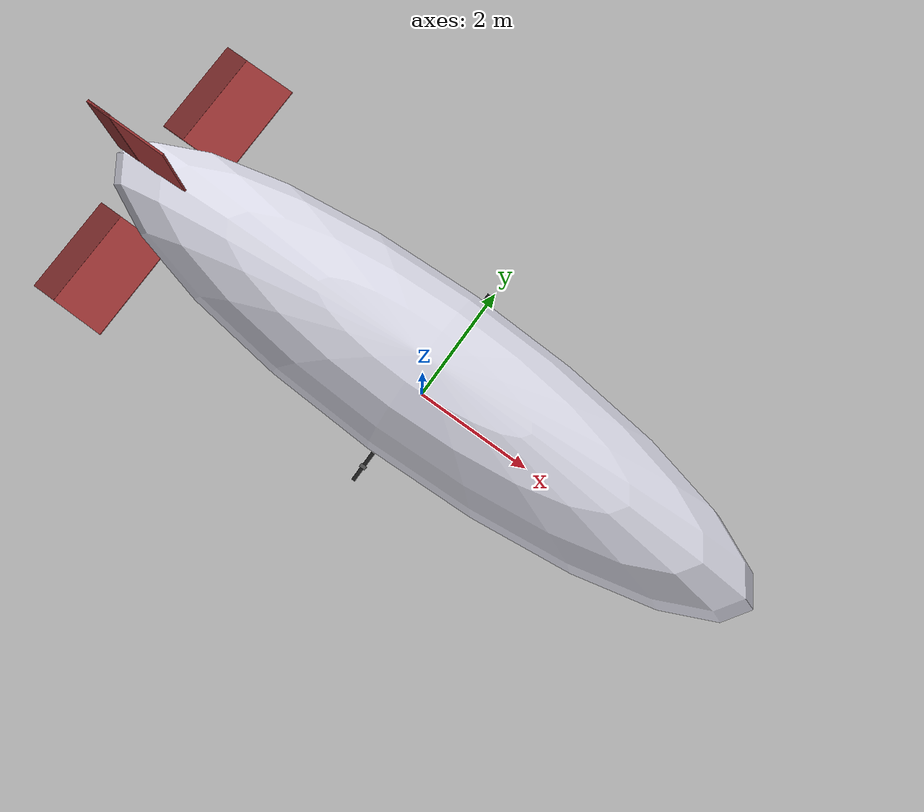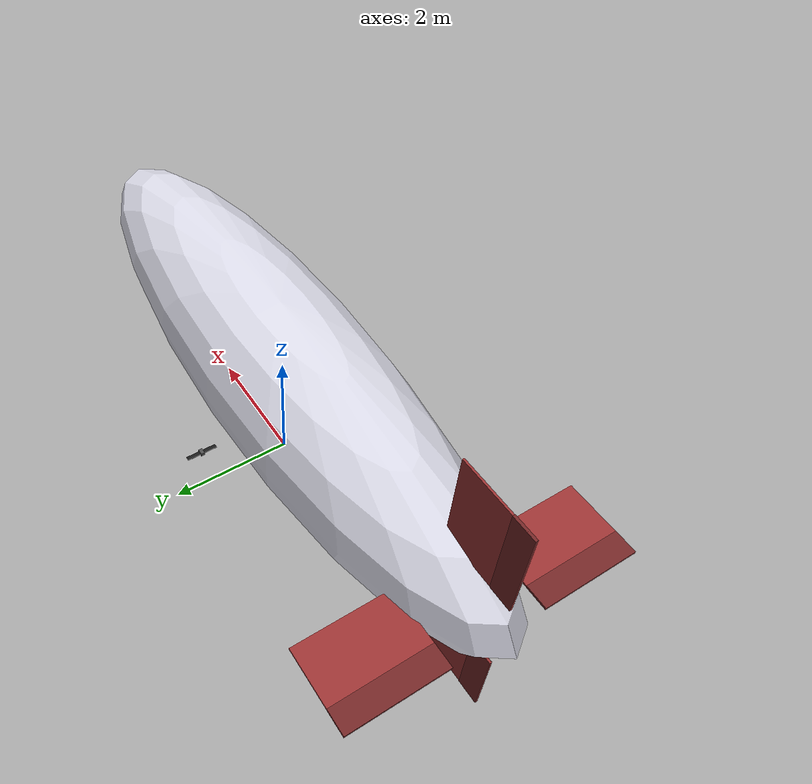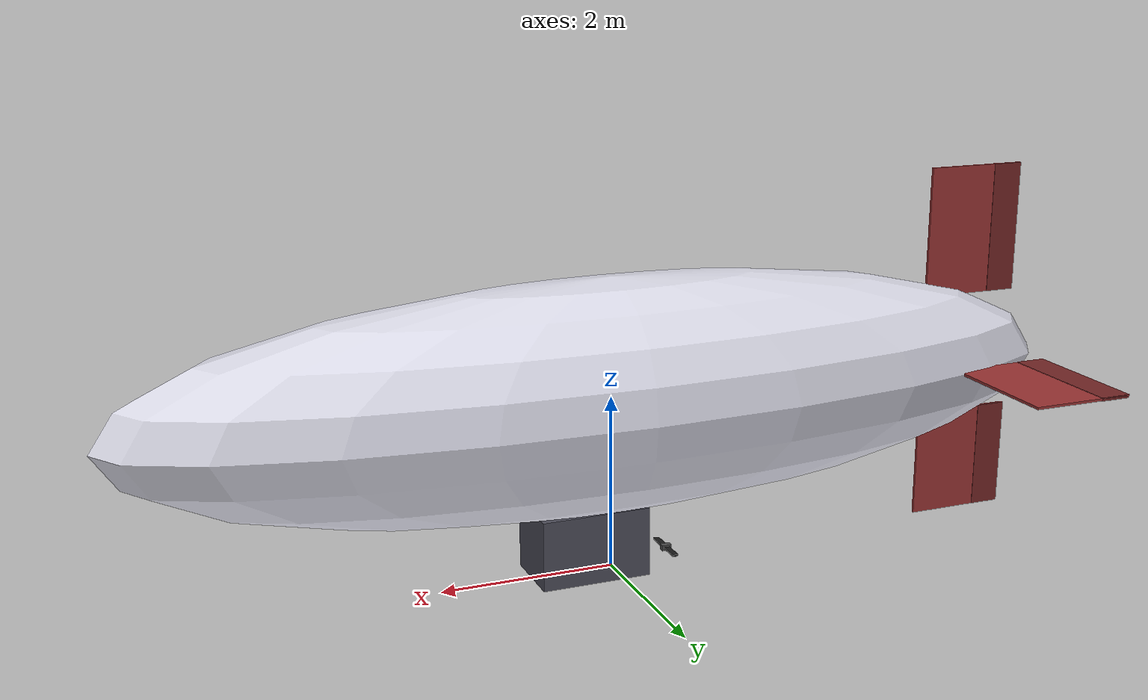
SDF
<?xml version="1.0" encoding="UTF-8"?>
<!--
  The complete fixed-thruster airship plant: airship_fixed_am merged plus the
  hull drag and rotational damping block. The model to fly the 2500 airframe
  against at speed.
-->
<sdf version="1.10">
  <model name="airship_fixed_am_drag">
    <include merge="true">
      <uri>model://airship_fixed_am</uri>
    </include>
    <plugin filename="gz-sim-hydrodynamics-system" name="gz::sim::systems::Hydrodynamics">
      <link_name>base_link</link_name>
      <!-- Quadratic drag [N/(m/s)^2] -->
      <xUabsU>-0.2748</xUabsU>
      <yVabsV>-10.3954</yVabsV>
      <zWabsW>-10.3954</zWabsW>
      <!-- Rotational damping [N m/(rad/s)^2], with the linear roll term the
           very lightly damped roll mode needs [N m/(rad/s)] -->
      <kP>-8.0520</kP>
      <kPabsP>-36.2342</kPabsP>
      <mQabsQ>-241.5613</mQabsQ>
      <nRabsR>-241.5613</nRabsR>
      <xQabsU>-1.1267</xQabsU>
      <yPabsV>42.6210</yPabsV>
      <mUabsU>-0.5634</mUabsU>
      <mQabsU>-2.3098</mQabsU>
      <kVabsV>21.3105</kVabsV>
      <kPabsV>-87.3731</kPabsV>
      <disable_added_mass>true</disable_added_mass>
    </plugin>
  </model>
</sdf>

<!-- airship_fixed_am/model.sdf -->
<sdf version="1.10">
  <model name="airship_fixed_am">
    <include merge="true">
      <uri>model://airship_base_am</uri>
    </include>
    <link name="pod_starboard">
      <pose>0 -1.5 0.8125 0 0 0</pose>
      <inertial>
        <mass>0.398</mass>
        <inertia>
          <ixx>0.001</ixx>
          <iyy>0.001</iyy>
          <izz>0.001</izz>
        </inertia>
      </inertial>
      <visual name="pod_starboard_visual">
        <geometry>
          <box>
            <size>0.10 0.06 0.06</size>
          </box>
        </geometry>
        <material>
          <ambient>0.3 0.3 0.3 1</ambient>
          <diffuse>0.3 0.3 0.3 1</diffuse>
        </material>
      </visual>
    </link>
    <joint name="mount_starboard_joint" type="fixed">
      <parent>base_link</parent>
      <child>pod_starboard</child>
    </joint>
    <link name="prop_starboard">
      <pose degrees="true">0 -1.5 0.8125 0 90 0</pose>
      <inertial>
        <mass>0.1</mass>
        <inertia>
          <ixx>0.001</ixx>
          <iyy>0.001</iyy>
          <izz>0.001</izz>
        </inertia>
      </inertial>
      <visual name="prop_starboard_visual">
        <geometry>
          <box>
            <size>0.02 0.5 0.06</size>
          </box>
        </geometry>
        <material>
          <ambient>0.1 0.1 0.1 1</ambient>
          <diffuse>0.1 0.1 0.1 1</diffuse>
        </material>
      </visual>
    </link>
    <joint name="prop_starboard_joint" type="revolute">
      <parent>pod_starboard</parent>
      <child>prop_starboard</child>
      <axis>
        <xyz>0 0 1</xyz>
        <limit>
          <lower>-1e+16</lower>
          <upper>1e+16</upper>
        </limit>
        <dynamics>
          <spring_reference>0</spring_reference>
          <spring_stiffness>0</spring_stiffness>
        </dynamics>
      </axis>
    </joint>
    <link name="pod_port">
      <pose>0 1.5 0.8125 0 0 0</pose>
      <inertial>
        <mass>0.398</mass>
        <inertia>
          <ixx>0.001</ixx>
          <iyy>0.001</iyy>
          <izz>0.001</izz>
        </inertia>
      </inertial>
      <visual name="pod_port_visual">
        <geometry>
          <box>
            <size>0.10 0.06 0.06</size>
          </box>
        </geometry>
        <material>
          <ambient>0.3 0.3 0.3 1</ambient>
          <diffuse>0.3 0.3 0.3 1</diffuse>
        </material>
      </visual>
    </link>
    <joint name="mount_port_joint" type="fixed">
      <parent>base_link</parent>
      <child>pod_port</child>
    </joint>
    <link name="prop_port">
      <pose degrees="true">0 1.5 0.8125 0 90 0</pose>
      <inertial>
        <mass>0.1</mass>
        <inertia>
          <ixx>0.001</ixx>
          <iyy>0.001</iyy>
          <izz>0.001</izz>
        </inertia>
      </inertial>
      <visual name="prop_port_visual">
        <geometry>
          <box>
            <size>0.02 0.5 0.06</size>
          </box>
        </geometry>
        <material>
          <ambient>0.1 0.1 0.1 1</ambient>
          <diffuse>0.1 0.1 0.1 1</diffuse>
        </material>
      </visual>
    </link>
    <joint name="prop_port_joint" type="revolute">
      <parent>pod_port</parent>
      <child>prop_port</child>
      <axis>
        <xyz>0 0 1</xyz>
        <limit>
          <lower>-1e+16</lower>
          <upper>1e+16</upper>
        </limit>
        <dynamics>
          <spring_reference>0</spring_reference>
          <spring_stiffness>0</spring_stiffness>
        </dynamics>
      </axis>
    </joint>
    <plugin filename="gz-sim-multicopter-motor-model-system"
            name="gz::sim::systems::MulticopterMotorModel">
      <jointName>prop_starboard_joint</jointName>
      <linkName>prop_starboard</linkName>
      <turningDirection>ccw</turningDirection>
      <timeConstantUp>0.0125</timeConstantUp>
      <timeConstantDown>0.025</timeConstantDown>
      <maxRotVelocity>300.0</maxRotVelocity>
      <motorConstant>0.0002</motorConstant>
      <momentConstant>0.016</momentConstant>
      <commandSubTopic>command/motor_speed</commandSubTopic>
      <motorNumber>0</motorNumber>
      <rotorDragCoefficient>8.06428e-05</rotorDragCoefficient>
      <rollingMomentCoefficient>1e-06</rollingMomentCoefficient>
      <rotorVelocitySlowdownSim>10</rotorVelocitySlowdownSim>
      <motorType>velocity</motorType>
    </plugin>
    <plugin filename="gz-sim-multicopter-motor-model-system"
            name="gz::sim::systems::MulticopterMotorModel">
      <jointName>prop_port_joint</jointName>
      <linkName>prop_port</linkName>
      <turningDirection>cw</turningDirection>
      <timeConstantUp>0.0125</timeConstantUp>
      <timeConstantDown>0.025</timeConstantDown>
      <maxRotVelocity>300.0</maxRotVelocity>
      <motorConstant>0.0002</motorConstant>
      <momentConstant>0.016</momentConstant>
      <commandSubTopic>command/motor_speed</commandSubTopic>
      <motorNumber>1</motorNumber>
      <rotorDragCoefficient>8.06428e-05</rotorDragCoefficient>
      <rollingMomentCoefficient>1e-06</rollingMomentCoefficient>
      <rotorVelocitySlowdownSim>10</rotorVelocitySlowdownSim>
      <motorType>velocity</motorType>
    </plugin>
    <link name="flap_port">
      <pose>-4.8257 1.4768 2.0500 0 0 0</pose>
      <inertial>
        <mass>0.001</mass>
        <inertia>
          <ixx>1e-05</ixx>
          <iyy>1e-05</iyy>
          <izz>1e-05</izz>
        </inertia>
      </inertial>
      <visual name="flap_port_visual">
        <pose>-0.180 0 0 0 0 0</pose>
        <geometry>
          <box>
            <size>0.36 1.52 0.04</size>
          </box>
        </geometry>
        <material>
          <ambient>0.45 0.15 0.15 1</ambient>
          <diffuse>0.45 0.15 0.15 1</diffuse>
        </material>
      </visual>
    </link>
    <joint name="flap_port_joint" type="revolute">
      <parent>base_link</parent>
      <child>flap_port</child>
      <axis>
        <xyz>0 1 0</xyz>
        <limit>
          <lower>-0.1920</lower>
          <upper>0.1920</upper>
        </limit>
        <dynamics>
          <damping>0.5</damping>
        </dynamics>
      </axis>
    </joint>
    <plugin filename="gz-sim-joint-position-controller-system"
            name="gz::sim::systems::JointPositionController">
      <joint_name>flap_port_joint</joint_name>
      <sub_topic>servo_1</sub_topic>
      <p_gain>10.0</p_gain>
      <i_gain>0</i_gain>
      <d_gain>0</d_gain>
    </plugin>
    <link name="flap_starboard">
      <pose>-4.8257 -1.4768 2.0500 0 0 0</pose>
      <inertial>
        <mass>0.001</mass>
        <inertia>
          <ixx>1e-05</ixx>
          <iyy>1e-05</iyy>
          <izz>1e-05</izz>
        </inertia>
      </inertial>
      <visual name="flap_starboard_visual">
        <pose>-0.180 0 0 0 0 0</pose>
        <geometry>
          <box>
            <size>0.36 1.52 0.04</size>
          </box>
        </geometry>
        <material>
          <ambient>0.45 0.15 0.15 1</ambient>
          <diffuse>0.45 0.15 0.15 1</diffuse>
        </material>
      </visual>
    </link>
    <joint name="flap_starboard_joint" type="revolute">
      <parent>base_link</parent>
      <child>flap_starboard</child>
      <axis>
        <xyz>0 1 0</xyz>
        <limit>
          <lower>-0.1920</lower>
          <upper>0.1920</upper>
        </limit>
        <dynamics>
          <damping>0.5</damping>
        </dynamics>
      </axis>
    </joint>
    <plugin filename="gz-sim-joint-position-controller-system"
            name="gz::sim::systems::JointPositionController">
      <joint_name>flap_starboard_joint</joint_name>
      <sub_topic>servo_0</sub_topic>
      <p_gain>10.0</p_gain>
      <i_gain>0</i_gain>
      <d_gain>0</d_gain>
    </plugin>
    <link name="flap_top">
      <pose>-4.8257 0.0000 3.5268 0 0 0</pose>
      <inertial>
        <mass>0.001</mass>
        <inertia>
          <ixx>1e-05</ixx>
          <iyy>1e-05</iyy>
          <izz>1e-05</izz>
        </inertia>
      </inertial>
      <visual name="flap_top_visual">
        <pose>-0.180 0 0 0 0 0</pose>
        <geometry>
          <box>
            <size>0.36 0.04 1.52</size>
          </box>
        </geometry>
        <material>
          <ambient>0.45 0.15 0.15 1</ambient>
          <diffuse>0.45 0.15 0.15 1</diffuse>
        </material>
      </visual>
    </link>
    <joint name="flap_top_joint" type="revolute">
      <parent>base_link</parent>
      <child>flap_top</child>
      <axis>
        <xyz>0 0 1</xyz>
        <limit>
          <lower>-0.1920</lower>
          <upper>0.1920</upper>
        </limit>
        <dynamics>
          <damping>0.5</damping>
        </dynamics>
      </axis>
    </joint>
    <plugin filename="gz-sim-joint-position-controller-system"
            name="gz::sim::systems::JointPositionController">
      <joint_name>flap_top_joint</joint_name>
      <sub_topic>servo_2</sub_topic>
      <p_gain>10.0</p_gain>
      <i_gain>0</i_gain>
      <d_gain>0</d_gain>
    </plugin>
    <link name="flap_bottom">
      <pose>-4.8257 0.0000 0.6932 0 0 0</pose>
      <inertial>
        <mass>0.001</mass>
        <inertia>
          <ixx>1e-05</ixx>
          <iyy>1e-05</iyy>
          <izz>1e-05</izz>
        </inertia>
      </inertial>
      <visual name="flap_bottom_visual">
        <pose>-0.180 0 0 0 0 0</pose>
        <geometry>
          <box>
            <size>0.36 0.04 1.28</size>
          </box>
        </geometry>
        <material>
          <ambient>0.45 0.15 0.15 1</ambient>
          <diffuse>0.45 0.15 0.15 1</diffuse>
        </material>
      </visual>
    </link>
    <joint name="flap_bottom_joint" type="revolute">
      <parent>base_link</parent>
      <child>flap_bottom</child>
      <axis>
        <xyz>0 0 1</xyz>
        <limit>
          <lower>-0.1920</lower>
          <upper>0.1920</upper>
        </limit>
        <dynamics>
          <damping>0.5</damping>
        </dynamics>
      </axis>
    </joint>
    <plugin filename="gz-sim-joint-position-controller-system"
            name="gz::sim::systems::JointPositionController">
      <joint_name>flap_bottom_joint</joint_name>
      <sub_topic>servo_3</sub_topic>
      <p_gain>10.0</p_gain>
      <i_gain>0</i_gain>
      <d_gain>0</d_gain>
    </plugin>
    <plugin filename="gz-sim-lift-drag-system" name="gz::sim::systems::LiftDrag">
      <!-- fin_port -->
      <link_name>base_link</link_name>
      <air_density>1.225</air_density>
      <cp>-4.2857 1.4768 2.0500</cp>
      <forward>1 0 0</forward>
      <upward>0 0 1</upward>
      <area>1.824</area>
      <a0>0</a0>
      <cla>6.122</cla>
      <cda>0.9133</cda>
      <cma>0</cma>
      <alpha_stall>0.1567</alpha_stall>
      <cla_stall>-0.6785</cla_stall>
      <cda_stall>0.7474</cda_stall>
      <cma_stall>0</cma_stall>
      <control_joint_name>flap_port_joint</control_joint_name>
      <control_joint_rad_to_cl>-2.361</control_joint_rad_to_cl>
    </plugin>
    <plugin filename="gz-sim-lift-drag-system" name="gz::sim::systems::LiftDrag">
      <!-- fin_starboard -->
      <link_name>base_link</link_name>
      <air_density>1.225</air_density>
      <cp>-4.2857 -1.4768 2.0500</cp>
      <forward>1 0 0</forward>
      <upward>0 0 1</upward>
      <area>1.824</area>
      <a0>0</a0>
      <cla>6.122</cla>
      <cda>0.9133</cda>
      <cma>0</cma>
      <alpha_stall>0.1567</alpha_stall>
      <cla_stall>-0.6785</cla_stall>
      <cda_stall>0.7474</cda_stall>
      <cma_stall>0</cma_stall>
      <control_joint_name>flap_starboard_joint</control_joint_name>
      <control_joint_rad_to_cl>-2.361</control_joint_rad_to_cl>
    </plugin>
    <plugin filename="gz-sim-lift-drag-system" name="gz::sim::systems::LiftDrag">
      <!-- fin_top -->
      <link_name>base_link</link_name>
      <air_density>1.225</air_density>
      <cp>-4.2857 0.0000 3.5268</cp>
      <forward>1 0 0</forward>
      <upward>0 1 0</upward>
      <area>1.824</area>
      <a0>0</a0>
      <cla>6.122</cla>
      <cda>0.9133</cda>
      <cma>0</cma>
      <alpha_stall>0.1567</alpha_stall>
      <cla_stall>-0.6785</cla_stall>
      <cda_stall>0.7474</cda_stall>
      <cma_stall>0</cma_stall>
      <control_joint_name>flap_top_joint</control_joint_name>
      <control_joint_rad_to_cl>2.361</control_joint_rad_to_cl>
    </plugin>
    <plugin filename="gz-sim-lift-drag-system" name="gz::sim::systems::LiftDrag">
      <!-- fin_bottom -->
      <link_name>base_link</link_name>
      <air_density>1.225</air_density>
      <cp>-4.2857 0.0000 0.6932</cp>
      <forward>1 0 0</forward>
      <upward>0 1 0</upward>
      <area>1.536</area>
      <a0>0</a0>
      <cla>5.989</cla>
      <cda>1.0379</cda>
      <cma>0</cma>
      <alpha_stall>0.1649</alpha_stall>
      <cla_stall>-0.7024</cla_stall>
      <cda_stall>0.7318</cda_stall>
      <cma_stall>0</cma_stall>
      <control_joint_name>flap_bottom_joint</control_joint_name>
      <control_joint_rad_to_cl>2.244</control_joint_rad_to_cl>
    </plugin>
  </model>
</sdf>

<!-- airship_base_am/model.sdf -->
<sdf version="1.10">
  <model name="airship_base_am">
    <self_collide>false</self_collide>
    <static>false</static>
    <link name="base_link">
      <pose>0 0 0 0 0 0</pose>
      <inertial>
        <pose>0.0067 0.0000 0.8170 0 0 0</pose>
        <mass>48.0</mass>
        <inertia>
          <ixx>41.0847</ixx>
          <iyy>151.4753</iyy>
          <izz>126.8963</izz>
          <ixy>0.0000</ixy>
          <ixz>20.0700</ixz>
          <iyz>0.0000</iyz>
        </inertia>
        <fluid_added_mass>
          <xx>3.65293</xx>
          <yy>41.67889</yy>
          <zz>41.67889</zz>
          <xq>7.48850</xq>
          <yp>-85.44173</yp>
          <pp>175.15555</pp>
          <qq>207.59558</qq>
          <rr>192.24415</rr>
        </fluid_added_mass>
      </inertial>
      <!-- The hull, drawn and collided alike; buoyancy volume 39.2 m^3 -->
      <collision name="hull_collision">
        <pose>0 0 2.05 0 0 0</pose>
        <geometry>
          <ellipsoid>
            <radii>5.48570 1.30612 1.30612</radii>
          </ellipsoid>
        </geometry>
      </collision>
      <!-- Ground contact; buoyancy volume 0.8 m^3 -->
      <collision name="gondola_collision">
        <pose>0.3277 0 0.4 0 0 0</pose>
        <geometry>
          <box>
            <size>1.25 0.8 0.8</size>
          </box>
        </geometry>
        <surface>
          <contact>
            <ode>
              <min_depth>0.001</min_depth>
              <max_vel>0</max_vel>
            </ode>
          </contact>
          <friction>
            <ode />
          </friction>
        </surface>
      </collision>
      <visual name="hull_visual">
        <pose>0 0 2.05 0 0 0</pose>
        <geometry>
          <ellipsoid>
            <radii>5.48570 1.30612 1.30612</radii>
          </ellipsoid>
        </geometry>
        <material>
          <ambient>0.85 0.85 0.9 1</ambient>
          <diffuse>0.85 0.85 0.9 1</diffuse>
          <specular>0.3 0.3 0.3 1</specular>
        </material>
      </visual>
      <visual name="gondola_visual">
        <pose>0.3277 0 0.4 0 0 0</pose>
        <geometry>
          <box>
            <size>1.25 0.8 0.8</size>
          </box>
        </geometry>
        <material>
          <ambient>0.3 0.3 0.35 1</ambient>
          <diffuse>0.3 0.3 0.35 1</diffuse>
          <specular>0.2 0.2 0.2 1</specular>
        </material>
      </visual>
      <visual name="fin_port_visual">
        <pose>-4.5857 1.4768 2.0500 0 0 0</pose>
        <geometry>
          <box>
            <size>1.20 1.52 0.03</size>
          </box>
        </geometry>
        <material>
          <ambient>0.6 0.2 0.2 1</ambient>
          <diffuse>0.6 0.2 0.2 1</diffuse>
        </material>
      </visual>
      <visual name="fin_starboard_visual">
        <pose>-4.5857 -1.4768 2.0500 0 0 0</pose>
        <geometry>
          <box>
            <size>1.20 1.52 0.03</size>
          </box>
        </geometry>
        <material>
          <ambient>0.6 0.2 0.2 1</ambient>
          <diffuse>0.6 0.2 0.2 1</diffuse>
        </material>
      </visual>
      <visual name="fin_top_visual">
        <pose>-4.5857 0.0000 3.5268 0 0 0</pose>
        <geometry>
          <box>
            <size>1.20 0.03 1.52</size>
          </box>
        </geometry>
        <material>
          <ambient>0.6 0.2 0.2 1</ambient>
          <diffuse>0.6 0.2 0.2 1</diffuse>
        </material>
      </visual>
      <visual name="fin_bottom_visual">
        <pose>-4.5857 0.0000 0.6932 0 0 0</pose>
        <geometry>
          <box>
            <size>1.20 0.03 1.28</size>
          </box>
        </geometry>
        <material>
          <ambient>0.6 0.2 0.2 1</ambient>
          <diffuse>0.6 0.2 0.2 1</diffuse>
        </material>
      </visual>
      <sensor name="air_pressure_sensor" type="air_pressure">
        <gz_frame_id>base_link</gz_frame_id>
        <always_on>1</always_on>
        <update_rate>50</update_rate>
        <air_pressure>
          <!-- Noise modeled after BMP390 -->
          <pressure>
            <noise type="gaussian">
              <mean>0</mean>
              <stddev>3</stddev>
            </noise>
          </pressure>
        </air_pressure>
      </sensor>
      <sensor name="magnetometer_sensor" type="magnetometer">
        <gz_frame_id>base_link</gz_frame_id>
        <always_on>1</always_on>
        <update_rate>100</update_rate>
        <magnetometer>
          <!-- TODO: update to fix units and coordinate system when we move past Harmonic -->
          <!-- See https://github.com/gazebosim/gz-sim/pull/2460 -->
          <!-- 3mgauss RMS: NOTE: noise is in tesla but sensor reports data in gauss -->
          <!-- Noise modeled after IIS2MDC -->
          <x>
            <noise type="gaussian">
              <stddev>0.0001</stddev>
            </noise>
          </x>
          <y>
            <noise type="gaussian">
              <stddev>0.0001</stddev>
            </noise>
          </y>
          <z>
            <noise type="gaussian">
              <stddev>0.0001</stddev>
            </noise>
          </z>
        </magnetometer>
      </sensor>
      <sensor name="imu_sensor" type="imu">
        <gz_frame_id>base_link</gz_frame_id>
        <always_on>1</always_on>
        <update_rate>250</update_rate>
        <imu>
          <angular_velocity>
            <!-- Noise modeled after IIM42653, 0.05 deg/s in rad/s -->
            <x>
              <noise type="gaussian">
                <mean>0.0</mean>
                <stddev>0.0008726646</stddev>
              </noise>
            </x>
            <y>
              <noise type="gaussian">
                <mean>0.0</mean>
                <stddev>0.0008726646</stddev>
              </noise>
            </y>
            <z>
              <noise type="gaussian">
                <mean>0.0</mean>
                <stddev>0.0008726646</stddev>
              </noise>
            </z>
          </angular_velocity>
          <linear_acceleration>
            <!-- Noise modeled after IIM42653, 0.65/0.70 mg-rms in m/s^2 -->
            <x>
              <noise type="gaussian">
                <mean>0.0</mean>
                <stddev>0.00637</stddev>
              </noise>
            </x>
            <y>
              <noise type="gaussian">
                <mean>0.0</mean>
                <stddev>0.00637</stddev>
              </noise>
            </y>
            <z>
              <noise type="gaussian">
                <mean>0.0</mean>
                <stddev>0.00686</stddev>
              </noise>
            </z>
          </linear_acceleration>
        </imu>
      </sensor>
      <sensor name="navsat_sensor" type="navsat">
        <gz_frame_id>base_link</gz_frame_id>
        <always_on>1</always_on>
        <update_rate>30</update_rate>
      </sensor>
    </link>
  </model>
</sdf>
